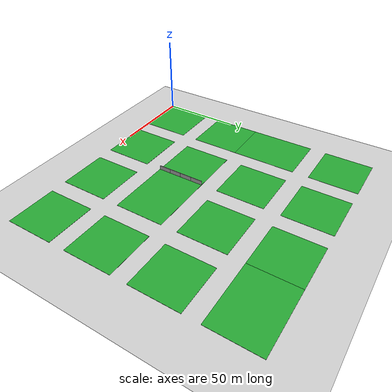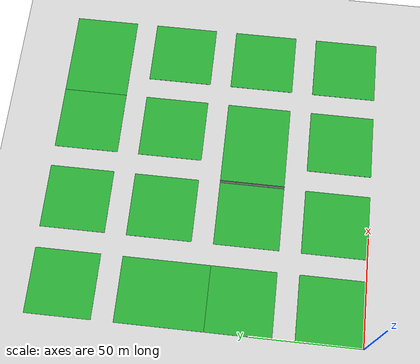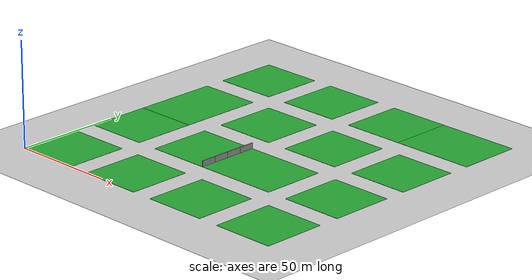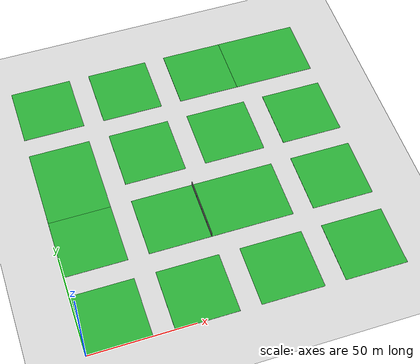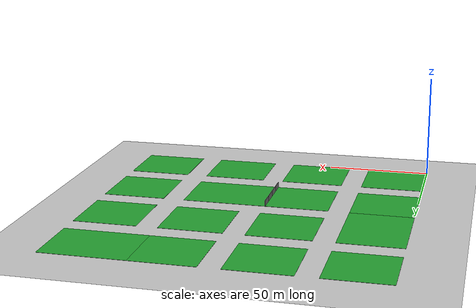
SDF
<sdf version="1.6">
 <world name="default">
  <plugin name="ros_interface_plugin" filename="librotors_gazebo_ros_interface_plugin.so"/>
  <physics name="default_physics" default="0" type="ode">
   <ode>
    <solver>
     <type>quick</type>
     <iters>1000</iters>
     <sor>1.3</sor>
     <use_dynamic_moi_rescaling>0</use_dynamic_moi_rescaling>
    </solver>
    <constraints>
     <cfm>0</cfm>
     <erp>0.2</erp>
     <contact_max_correcting_vel>100</contact_max_correcting_vel>
     <contact_surface_layer>0.001</contact_surface_layer>
    </constraints>
   </ode>
   <max_step_size>0.01</max_step_size>
   <real_time_factor>1</real_time_factor>
   <real_time_update_rate>100</real_time_update_rate>
  </physics>
  <model name="ground_plane">
   <static>1</static>
   <link name="link">
    <collision name="collision">
     <geometry><plane><normal>0 0 1</normal><size>150 150</size></plane></geometry>
     <surface>
      <contact><collide_bitmask>65535</collide_bitmask></contact>
      <friction><ode><mu>100</mu><mu2>50</mu2></ode></friction>
     </surface>
    </collision>
    <visual name="visual">
     <cast_shadows>0</cast_shadows>
     <geometry><plane><normal>0 0 1</normal><size>150 150</size></plane></geometry>
     <material>
      <script><uri>file://media/materials/scripts/gazebo.material</uri><name>Gazebo/Grey</name></script>
     </material>
    </visual>
   </link>
   <pose>75 75 0 0 -0 1.5707</pose>
  </model>
  <light name="sun" type="directional">
   <cast_shadows>0</cast_shadows>
   <pose>50 50 50 0 -0 0</pose>
   <diffuse>0.8 0.8 0.8 1</diffuse>
   <specular>0.2 0.2 0.2 1</specular>
   <attenuation>
    <range>1000</range>
    <constant>0.9</constant>
    <linear>0.01</linear>
    <quadratic>0.001</quadratic>
   </attenuation>
   <direction>0.2 0.2 -0.9</direction>
  </light>
  <model name="block_plane">
   <link name="link">
    <inertial>
     <mass>1</mass>
     <inertia>
      <ixx>0.166667</ixx>
      <ixy>0</ixy>
      <ixz>0</ixz>
      <iyy>0.166667</iyy>
      <iyz>0</iyz>
      <izz>0.166667</izz>
     </inertia>
    </inertial>
    <visual name="visual">
     <geometry><box><size>30 30 0.1</size></box></geometry>
     <material>
      <script><name>Gazebo/Green</name><uri>file://media/materials/scripts/gazebo.material</uri></script>
      <shader type="vertex"><normal_map>__default__</normal_map></shader>
      <ambient>0.1 0.5 0.1 1</ambient>
      <diffuse>0.4 0.7 0.4 1</diffuse>
      <specular>0.01 0.01 0.01 1</specular>
      <emissive>0 0 0 1</emissive>
     </material>
    </visual>
    <collision name="collision">
     <geometry><box><size>30 30 0.1</size></box></geometry>
     <surface>
      <friction>
       <ode><mu>1</mu><mu2>1</mu2><fdir1>0 0 0</fdir1><slip1>0</slip1><slip2>0</slip2></ode>
       <torsional>
        <coefficient>1</coefficient>
        <patch_radius>0</patch_radius>
        <surface_radius>0</surface_radius>
        <use_patch_radius>1</use_patch_radius>
        <ode><slip>0</slip></ode>
       </torsional>
      </friction>
      <bounce><restitution_coefficient>0</restitution_coefficient><threshold>1e+06</threshold></bounce>
      <contact>
       <collide_without_contact>0</collide_without_contact>
       <collide_without_contact_bitmask>1</collide_without_contact_bitmask>
       <collide_bitmask>1</collide_bitmask>
       <ode>
        <soft_cfm>0</soft_cfm>
        <soft_erp>0.2</soft_erp>
        <kp>1e+13</kp>
        <kd>1</kd>
        <max_vel>0.01</max_vel>
        <min_depth>0</min_depth>
       </ode>
       <bullet>
        <split_impulse>1</split_impulse>
        <split_impulse_penetration_threshold>-0.01</split_impulse_penetration_threshold>
        <soft_cfm>0</soft_cfm>
        <soft_erp>0.2</soft_erp>
        <kp>1e+13</kp>
        <kd>1</kd>
       </bullet>
      </contact>
     </surface>
    </collision>
   </link>
   <static>1</static>
   <pose>15 15 0 0 -0 0</pose>
  </model>
  <model name="block_plane_1">
   <link name="link">
    <inertial>
     <mass>1</mass>
     <inertia>
      <ixx>0.166667</ixx>
      <ixy>0</ixy>
      <ixz>0</ixz>
      <iyy>0.166667</iyy>
      <iyz>0</iyz>
      <izz>0.166667</izz>
     </inertia>
    </inertial>
    <visual name="visual">
     <geometry><box><size>30 30 0.1</size></box></geometry>
     <material>
      <script><name>Gazebo/Green</name><uri>file://media/materials/scripts/gazebo.material</uri></script>
      <shader type="vertex"><normal_map>__default__</normal_map></shader>
      <ambient>0.1 0.5 0.1 1</ambient>
      <diffuse>0.4 0.7 0.4 1</diffuse>
      <specular>0.01 0.01 0.01 1</specular>
      <emissive>0 0 0 1</emissive>
     </material>
    </visual>
    <collision name="collision">
     <geometry><box><size>30 30 0.1</size></box></geometry>
     <surface>
      <friction>
       <ode><mu>1</mu><mu2>1</mu2><fdir1>0 0 0</fdir1><slip1>0</slip1><slip2>0</slip2></ode>
       <torsional>
        <coefficient>1</coefficient>
        <patch_radius>0</patch_radius>
        <surface_radius>0</surface_radius>
        <use_patch_radius>1</use_patch_radius>
        <ode><slip>0</slip></ode>
       </torsional>
      </friction>
      <bounce><restitution_coefficient>0</restitution_coefficient><threshold>1e+06</threshold></bounce>
      <contact>
       <collide_without_contact>0</collide_without_contact>
       <collide_without_contact_bitmask>1</collide_without_contact_bitmask>
       <collide_bitmask>1</collide_bitmask>
       <ode>
        <soft_cfm>0</soft_cfm>
        <soft_erp>0.2</soft_erp>
        <kp>1e+13</kp>
        <kd>1</kd>
        <max_vel>0.01</max_vel>
        <min_depth>0</min_depth>
       </ode>
       <bullet>
        <split_impulse>1</split_impulse>
        <split_impulse_penetration_threshold>-0.01</split_impulse_penetration_threshold>
        <soft_cfm>0</soft_cfm>
        <soft_erp>0.2</soft_erp>
        <kp>1e+13</kp>
        <kd>1</kd>
       </bullet>
      </contact>
     </surface>
    </collision>
   </link>
   <static>1</static>
   <pose>55 15 0 0 -0 0</pose>
  </model>
  <model name="block_plane_2">
   <link name="link">
    <inertial>
     <mass>1</mass>
     <inertia>
      <ixx>0.166667</ixx>
      <ixy>0</ixy>
      <ixz>0</ixz>
      <iyy>0.166667</iyy>
      <iyz>0</iyz>
      <izz>0.166667</izz>
     </inertia>
    </inertial>
    <visual name="visual">
     <geometry><box><size>30 30 0.1</size></box></geometry>
     <material>
      <script><name>Gazebo/Green</name><uri>file://media/materials/scripts/gazebo.material</uri></script>
      <shader type="vertex"><normal_map>__default__</normal_map></shader>
      <ambient>0.1 0.5 0.1 1</ambient>
      <diffuse>0.4 0.7 0.4 1</diffuse>
      <specular>0.01 0.01 0.01 1</specular>
      <emissive>0 0 0 1</emissive>
     </material>
    </visual>
    <collision name="collision">
     <geometry><box><size>30 30 0.1</size></box></geometry>
     <surface>
      <friction>
       <ode><mu>1</mu><mu2>1</mu2><fdir1>0 0 0</fdir1><slip1>0</slip1><slip2>0</slip2></ode>
       <torsional>
        <coefficient>1</coefficient>
        <patch_radius>0</patch_radius>
        <surface_radius>0</surface_radius>
        <use_patch_radius>1</use_patch_radius>
        <ode><slip>0</slip></ode>
       </torsional>
      </friction>
      <bounce><restitution_coefficient>0</restitution_coefficient><threshold>1e+06</threshold></bounce>
      <contact>
       <collide_without_contact>0</collide_without_contact>
       <collide_without_contact_bitmask>1</collide_without_contact_bitmask>
       <collide_bitmask>1</collide_bitmask>
       <ode>
        <soft_cfm>0</soft_cfm>
        <soft_erp>0.2</soft_erp>
        <kp>1e+13</kp>
        <kd>1</kd>
        <max_vel>0.01</max_vel>
        <min_depth>0</min_depth>
       </ode>
       <bullet>
        <split_impulse>1</split_impulse>
        <split_impulse_penetration_threshold>-0.01</split_impulse_penetration_threshold>
        <soft_cfm>0</soft_cfm>
        <soft_erp>0.2</soft_erp>
        <kp>1e+13</kp>
        <kd>1</kd>
       </bullet>
      </contact>
     </surface>
    </collision>
   </link>
   <static>1</static>
   <pose>95 15 0 0 -0 0</pose>
  </model>
  <model name="block_plane_3">
   <link name="link">
    <inertial>
     <mass>1</mass>
     <inertia>
      <ixx>0.166667</ixx>
      <ixy>0</ixy>
      <ixz>0</ixz>
      <iyy>0.166667</iyy>
      <iyz>0</iyz>
      <izz>0.166667</izz>
     </inertia>
    </inertial>
    <visual name="visual">
     <geometry><box><size>30 30 0.1</size></box></geometry>
     <material>
      <script><name>Gazebo/Green</name><uri>file://media/materials/scripts/gazebo.material</uri></script>
      <shader type="vertex"><normal_map>__default__</normal_map></shader>
      <ambient>0.1 0.5 0.1 1</ambient>
      <diffuse>0.4 0.7 0.4 1</diffuse>
      <specular>0.01 0.01 0.01 1</specular>
      <emissive>0 0 0 1</emissive>
     </material>
    </visual>
    <collision name="collision">
     <geometry><box><size>30 30 0.1</size></box></geometry>
     <surface>
      <friction>
       <ode><mu>1</mu><mu2>1</mu2><fdir1>0 0 0</fdir1><slip1>0</slip1><slip2>0</slip2></ode>
       <torsional>
        <coefficient>1</coefficient>
        <patch_radius>0</patch_radius>
        <surface_radius>0</surface_radius>
        <use_patch_radius>1</use_patch_radius>
        <ode><slip>0</slip></ode>
       </torsional>
      </friction>
      <bounce><restitution_coefficient>0</restitution_coefficient><threshold>1e+06</threshold></bounce>
      <contact>
       <collide_without_contact>0</collide_without_contact>
       <collide_without_contact_bitmask>1</collide_without_contact_bitmask>
       <collide_bitmask>1</collide_bitmask>
       <ode>
        <soft_cfm>0</soft_cfm>
        <soft_erp>0.2</soft_erp>
        <kp>1e+13</kp>
        <kd>1</kd>
        <max_vel>0.01</max_vel>
        <min_depth>0</min_depth>
       </ode>
       <bullet>
        <split_impulse>1</split_impulse>
        <split_impulse_penetration_threshold>-0.01</split_impulse_penetration_threshold>
        <soft_cfm>0</soft_cfm>
        <soft_erp>0.2</soft_erp>
        <kp>1e+13</kp>
        <kd>1</kd>
       </bullet>
      </contact>
     </surface>
    </collision>
   </link>
   <static>1</static>
   <pose>135 15 0 0 -0 0</pose>
  </model>
  <model name="block_plane_4">
   <link name="link">
    <inertial>
     <mass>1</mass>
     <inertia>
      <ixx>0.166667</ixx>
      <ixy>0</ixy>
      <ixz>0</ixz>
      <iyy>0.166667</iyy>
      <iyz>0</iyz>
      <izz>0.166667</izz>
     </inertia>
    </inertial>
    <visual name="visual">
     <geometry><box><size>30 30 0.1</size></box></geometry>
     <material>
      <script><name>Gazebo/Green</name><uri>file://media/materials/scripts/gazebo.material</uri></script>
      <shader type="vertex"><normal_map>__default__</normal_map></shader>
      <ambient>0.1 0.5 0.1 1</ambient>
      <diffuse>0.4 0.7 0.4 1</diffuse>
      <specular>0.01 0.01 0.01 1</specular>
      <emissive>0 0 0 1</emissive>
     </material>
    </visual>
    <collision name="collision">
     <geometry><box><size>30 30 0.1</size></box></geometry>
     <surface>
      <friction>
       <ode><mu>1</mu><mu2>1</mu2><fdir1>0 0 0</fdir1><slip1>0</slip1><slip2>0</slip2></ode>
       <torsional>
        <coefficient>1</coefficient>
        <patch_radius>0</patch_radius>
        <surface_radius>0</surface_radius>
        <use_patch_radius>1</use_patch_radius>
        <ode><slip>0</slip></ode>
       </torsional>
      </friction>
      <bounce><restitution_coefficient>0</restitution_coefficient><threshold>1e+06</threshold></bounce>
      <contact>
       <collide_without_contact>0</collide_without_contact>
       <collide_without_contact_bitmask>1</collide_without_contact_bitmask>
       <collide_bitmask>1</collide_bitmask>
       <ode>
        <soft_cfm>0</soft_cfm>
        <soft_erp>0.2</soft_erp>
        <kp>1e+13</kp>
        <kd>1</kd>
        <max_vel>0.01</max_vel>
        <min_depth>0</min_depth>
       </ode>
       <bullet>
        <split_impulse>1</split_impulse>
        <split_impulse_penetration_threshold>-0.01</split_impulse_penetration_threshold>
        <soft_cfm>0</soft_cfm>
        <soft_erp>0.2</soft_erp>
        <kp>1e+13</kp>
        <kd>1</kd>
       </bullet>
      </contact>
     </surface>
    </collision>
   </link>
   <static>1</static>
   <pose>15 55 0 0 -0 0</pose>
  </model>
  <model name="block_plane_5">
   <link name="link">
    <inertial>
     <mass>1</mass>
     <inertia>
      <ixx>0.166667</ixx>
      <ixy>0</ixy>
      <ixz>0</ixz>
      <iyy>0.166667</iyy>
      <iyz>0</iyz>
      <izz>0.166667</izz>
     </inertia>
    </inertial>
    <visual name="visual">
     <geometry><box><size>30 30 0.1</size></box></geometry>
     <material>
      <script><name>Gazebo/Green</name><uri>file://media/materials/scripts/gazebo.material</uri></script>
      <shader type="vertex"><normal_map>__default__</normal_map></shader>
      <ambient>0.1 0.5 0.1 1</ambient>
      <diffuse>0.4 0.7 0.4 1</diffuse>
      <specular>0.01 0.01 0.01 1</specular>
      <emissive>0 0 0 1</emissive>
     </material>
    </visual>
    <collision name="collision">
     <geometry><box><size>30 30 0.1</size></box></geometry>
     <surface>
      <friction>
       <ode><mu>1</mu><mu2>1</mu2><fdir1>0 0 0</fdir1><slip1>0</slip1><slip2>0</slip2></ode>
       <torsional>
        <coefficient>1</coefficient>
        <patch_radius>0</patch_radius>
        <surface_radius>0</surface_radius>
        <use_patch_radius>1</use_patch_radius>
        <ode><slip>0</slip></ode>
       </torsional>
      </friction>
      <bounce><restitution_coefficient>0</restitution_coefficient><threshold>1e+06</threshold></bounce>
      <contact>
       <collide_without_contact>0</collide_without_contact>
       <collide_without_contact_bitmask>1</collide_without_contact_bitmask>
       <collide_bitmask>1</collide_bitmask>
       <ode>
        <soft_cfm>0</soft_cfm>
        <soft_erp>0.2</soft_erp>
        <kp>1e+13</kp>
        <kd>1</kd>
        <max_vel>0.01</max_vel>
        <min_depth>0</min_depth>
       </ode>
       <bullet>
        <split_impulse>1</split_impulse>
        <split_impulse_penetration_threshold>-0.01</split_impulse_penetration_threshold>
        <soft_cfm>0</soft_cfm>
        <soft_erp>0.2</soft_erp>
        <kp>1e+13</kp>
        <kd>1</kd>
       </bullet>
      </contact>
     </surface>
    </collision>
   </link>
   <static>1</static>
   <pose>55 55 0 0 -0 0</pose>
  </model>
  <model name="block_plane_6">
   <link name="link">
    <inertial>
     <mass>1</mass>
     <inertia>
      <ixx>0.166667</ixx>
      <ixy>0</ixy>
      <ixz>0</ixz>
      <iyy>0.166667</iyy>
      <iyz>0</iyz>
      <izz>0.166667</izz>
     </inertia>
    </inertial>
    <visual name="visual">
     <geometry><box><size>30 30 0.1</size></box></geometry>
     <material>
      <script><name>Gazebo/Green</name><uri>file://media/materials/scripts/gazebo.material</uri></script>
      <shader type="vertex"><normal_map>__default__</normal_map></shader>
      <ambient>0.1 0.5 0.1 1</ambient>
      <diffuse>0.4 0.7 0.4 1</diffuse>
      <specular>0.01 0.01 0.01 1</specular>
      <emissive>0 0 0 1</emissive>
     </material>
    </visual>
    <collision name="collision">
     <geometry><box><size>30 30 0.1</size></box></geometry>
     <surface>
      <friction>
       <ode><mu>1</mu><mu2>1</mu2><fdir1>0 0 0</fdir1><slip1>0</slip1><slip2>0</slip2></ode>
       <torsional>
        <coefficient>1</coefficient>
        <patch_radius>0</patch_radius>
        <surface_radius>0</surface_radius>
        <use_patch_radius>1</use_patch_radius>
        <ode><slip>0</slip></ode>
       </torsional>
      </friction>
      <bounce><restitution_coefficient>0</restitution_coefficient><threshold>1e+06</threshold></bounce>
      <contact>
       <collide_without_contact>0</collide_without_contact>
       <collide_without_contact_bitmask>1</collide_without_contact_bitmask>
       <collide_bitmask>1</collide_bitmask>
       <ode>
        <soft_cfm>0</soft_cfm>
        <soft_erp>0.2</soft_erp>
        <kp>1e+13</kp>
        <kd>1</kd>
        <max_vel>0.01</max_vel>
        <min_depth>0</min_depth>
       </ode>
       <bullet>
        <split_impulse>1</split_impulse>
        <split_impulse_penetration_threshold>-0.01</split_impulse_penetration_threshold>
        <soft_cfm>0</soft_cfm>
        <soft_erp>0.2</soft_erp>
        <kp>1e+13</kp>
        <kd>1</kd>
       </bullet>
      </contact>
     </surface>
    </collision>
   </link>
   <static>1</static>
   <pose>135 55 0 0 -0 0</pose>
  </model>
  <model name="block_plane_7">
   <link name="link">
    <inertial>
     <mass>1</mass>
     <inertia>
      <ixx>0.166667</ixx>
      <ixy>0</ixy>
      <ixz>0</ixz>
      <iyy>0.166667</iyy>
      <iyz>0</iyz>
      <izz>0.166667</izz>
     </inertia>
    </inertial>
    <visual name="visual">
     <geometry><box><size>30 30 0.1</size></box></geometry>
     <material>
      <script><name>Gazebo/Green</name><uri>file://media/materials/scripts/gazebo.material</uri></script>
      <shader type="vertex"><normal_map>__default__</normal_map></shader>
      <ambient>0.1 0.5 0.1 1</ambient>
      <diffuse>0.4 0.7 0.4 1</diffuse>
      <specular>0.01 0.01 0.01 1</specular>
      <emissive>0 0 0 1</emissive>
     </material>
    </visual>
    <collision name="collision">
     <geometry><box><size>30 30 0.1</size></box></geometry>
     <surface>
      <friction>
       <ode><mu>1</mu><mu2>1</mu2><fdir1>0 0 0</fdir1><slip1>0</slip1><slip2>0</slip2></ode>
       <torsional>
        <coefficient>1</coefficient>
        <patch_radius>0</patch_radius>
        <surface_radius>0</surface_radius>
        <use_patch_radius>1</use_patch_radius>
        <ode><slip>0</slip></ode>
       </torsional>
      </friction>
      <bounce><restitution_coefficient>0</restitution_coefficient><threshold>1e+06</threshold></bounce>
      <contact>
       <collide_without_contact>0</collide_without_contact>
       <collide_without_contact_bitmask>1</collide_without_contact_bitmask>
       <collide_bitmask>1</collide_bitmask>
       <ode>
        <soft_cfm>0</soft_cfm>
        <soft_erp>0.2</soft_erp>
        <kp>1e+13</kp>
        <kd>1</kd>
        <max_vel>0.01</max_vel>
        <min_depth>0</min_depth>
       </ode>
       <bullet>
        <split_impulse>1</split_impulse>
        <split_impulse_penetration_threshold>-0.01</split_impulse_penetration_threshold>
        <soft_cfm>0</soft_cfm>
        <soft_erp>0.2</soft_erp>
        <kp>1e+13</kp>
        <kd>1</kd>
       </bullet>
      </contact>
     </surface>
    </collision>
   </link>
   <static>1</static>
   <pose>55 95 0 0 -0 0</pose>
  </model>
  <model name="block_plane_8">
   <link name="link">
    <inertial>
     <mass>1</mass>
     <inertia>
      <ixx>0.166667</ixx>
      <ixy>0</ixy>
      <ixz>0</ixz>
      <iyy>0.166667</iyy>
      <iyz>0</iyz>
      <izz>0.166667</izz>
     </inertia>
    </inertial>
    <visual name="visual">
     <geometry><box><size>30 30 0.1</size></box></geometry>
     <material>
      <script><name>Gazebo/Green</name><uri>file://media/materials/scripts/gazebo.material</uri></script>
      <shader type="vertex"><normal_map>__default__</normal_map></shader>
      <ambient>0.1 0.5 0.1 1</ambient>
      <diffuse>0.4 0.7 0.4 1</diffuse>
      <specular>0.01 0.01 0.01 1</specular>
      <emissive>0 0 0 1</emissive>
     </material>
    </visual>
    <collision name="collision">
     <geometry><box><size>30 30 0.1</size></box></geometry>
     <surface>
      <friction>
       <ode><mu>1</mu><mu2>1</mu2><fdir1>0 0 0</fdir1><slip1>0</slip1><slip2>0</slip2></ode>
       <torsional>
        <coefficient>1</coefficient>
        <patch_radius>0</patch_radius>
        <surface_radius>0</surface_radius>
        <use_patch_radius>1</use_patch_radius>
        <ode><slip>0</slip></ode>
       </torsional>
      </friction>
      <bounce><restitution_coefficient>0</restitution_coefficient><threshold>1e+06</threshold></bounce>
      <contact>
       <collide_without_contact>0</collide_without_contact>
       <collide_without_contact_bitmask>1</collide_without_contact_bitmask>
       <collide_bitmask>1</collide_bitmask>
       <ode>
        <soft_cfm>0</soft_cfm>
        <soft_erp>0.2</soft_erp>
        <kp>1e+13</kp>
        <kd>1</kd>
        <max_vel>0.01</max_vel>
        <min_depth>0</min_depth>
       </ode>
       <bullet>
        <split_impulse>1</split_impulse>
        <split_impulse_penetration_threshold>-0.01</split_impulse_penetration_threshold>
        <soft_cfm>0</soft_cfm>
        <soft_erp>0.2</soft_erp>
        <kp>1e+13</kp>
        <kd>1</kd>
       </bullet>
      </contact>
     </surface>
    </collision>
   </link>
   <static>1</static>
   <pose>95 95 0 0 -0 0</pose>
  </model>
  <model name="block_plane_9">
   <link name="link">
    <inertial>
     <mass>1</mass>
     <inertia>
      <ixx>0.166667</ixx>
      <ixy>0</ixy>
      <ixz>0</ixz>
      <iyy>0.166667</iyy>
      <iyz>0</iyz>
      <izz>0.166667</izz>
     </inertia>
    </inertial>
    <visual name="visual">
     <geometry><box><size>30 30 0.1</size></box></geometry>
     <material>
      <script><name>Gazebo/Green</name><uri>file://media/materials/scripts/gazebo.material</uri></script>
      <shader type="vertex"><normal_map>__default__</normal_map></shader>
      <ambient>0.1 0.5 0.1 1</ambient>
      <diffuse>0.4 0.7 0.4 1</diffuse>
      <specular>0.01 0.01 0.01 1</specular>
      <emissive>0 0 0 1</emissive>
     </material>
    </visual>
    <collision name="collision">
     <geometry><box><size>30 30 0.1</size></box></geometry>
     <surface>
      <friction>
       <ode><mu>1</mu><mu2>1</mu2><fdir1>0 0 0</fdir1><slip1>0</slip1><slip2>0</slip2></ode>
       <torsional>
        <coefficient>1</coefficient>
        <patch_radius>0</patch_radius>
        <surface_radius>0</surface_radius>
        <use_patch_radius>1</use_patch_radius>
        <ode><slip>0</slip></ode>
       </torsional>
      </friction>
      <bounce><restitution_coefficient>0</restitution_coefficient><threshold>1e+06</threshold></bounce>
      <contact>
       <collide_without_contact>0</collide_without_contact>
       <collide_without_contact_bitmask>1</collide_without_contact_bitmask>
       <collide_bitmask>1</collide_bitmask>
       <ode>
        <soft_cfm>0</soft_cfm>
        <soft_erp>0.2</soft_erp>
        <kp>1e+13</kp>
        <kd>1</kd>
        <max_vel>0.01</max_vel>
        <min_depth>0</min_depth>
       </ode>
       <bullet>
        <split_impulse>1</split_impulse>
        <split_impulse_penetration_threshold>-0.01</split_impulse_penetration_threshold>
        <soft_cfm>0</soft_cfm>
        <soft_erp>0.2</soft_erp>
        <kp>1e+13</kp>
        <kd>1</kd>
       </bullet>
      </contact>
     </surface>
    </collision>
   </link>
   <static>1</static>
   <pose>135 95 0 0 -0 0</pose>
  </model>
  <model name="block_plane_10">
   <link name="link">
    <inertial>
     <mass>1</mass>
     <inertia>
      <ixx>0.166667</ixx>
      <ixy>0</ixy>
      <ixz>0</ixz>
      <iyy>0.166667</iyy>
      <iyz>0</iyz>
      <izz>0.166667</izz>
     </inertia>
    </inertial>
    <visual name="visual">
     <geometry><box><size>30 30 0.1</size></box></geometry>
     <material>
      <script><name>Gazebo/Green</name><uri>file://media/materials/scripts/gazebo.material</uri></script>
      <shader type="vertex"><normal_map>__default__</normal_map></shader>
      <ambient>0.1 0.5 0.1 1</ambient>
      <diffuse>0.4 0.7 0.4 1</diffuse>
      <specular>0.01 0.01 0.01 1</specular>
      <emissive>0 0 0 1</emissive>
     </material>
    </visual>
    <collision name="collision">
     <geometry><box><size>30 30 0.1</size></box></geometry>
     <surface>
      <friction>
       <ode><mu>1</mu><mu2>1</mu2><fdir1>0 0 0</fdir1><slip1>0</slip1><slip2>0</slip2></ode>
       <torsional>
        <coefficient>1</coefficient>
        <patch_radius>0</patch_radius>
        <surface_radius>0</surface_radius>
        <use_patch_radius>1</use_patch_radius>
        <ode><slip>0</slip></ode>
       </torsional>
      </friction>
      <bounce><restitution_coefficient>0</restitution_coefficient><threshold>1e+06</threshold></bounce>
      <contact>
       <collide_without_contact>0</collide_without_contact>
       <collide_without_contact_bitmask>1</collide_without_contact_bitmask>
       <collide_bitmask>1</collide_bitmask>
       <ode>
        <soft_cfm>0</soft_cfm>
        <soft_erp>0.2</soft_erp>
        <kp>1e+13</kp>
        <kd>1</kd>
        <max_vel>0.01</max_vel>
        <min_depth>0</min_depth>
       </ode>
       <bullet>
        <split_impulse>1</split_impulse>
        <split_impulse_penetration_threshold>-0.01</split_impulse_penetration_threshold>
        <soft_cfm>0</soft_cfm>
        <soft_erp>0.2</soft_erp>
        <kp>1e+13</kp>
        <kd>1</kd>
       </bullet>
      </contact>
     </surface>
    </collision>
   </link>
   <static>1</static>
   <pose>15 135 0 0 -0 0</pose>
  </model>
  <model name="block_plane_11">
   <link name="link">
    <inertial>
     <mass>1</mass>
     <inertia>
      <ixx>0.166667</ixx>
      <ixy>0</ixy>
      <ixz>0</ixz>
      <iyy>0.166667</iyy>
      <iyz>0</iyz>
      <izz>0.166667</izz>
     </inertia>
    </inertial>
    <visual name="visual">
     <geometry><box><size>30 30 0.1</size></box></geometry>
     <material>
      <script><name>Gazebo/Green</name><uri>file://media/materials/scripts/gazebo.material</uri></script>
      <shader type="vertex"><normal_map>__default__</normal_map></shader>
      <ambient>0.1 0.5 0.1 1</ambient>
      <diffuse>0.4 0.7 0.4 1</diffuse>
      <specular>0.01 0.01 0.01 1</specular>
      <emissive>0 0 0 1</emissive>
     </material>
    </visual>
    <collision name="collision">
     <geometry><box><size>30 30 0.1</size></box></geometry>
     <surface>
      <friction>
       <ode><mu>1</mu><mu2>1</mu2><fdir1>0 0 0</fdir1><slip1>0</slip1><slip2>0</slip2></ode>
       <torsional>
        <coefficient>1</coefficient>
        <patch_radius>0</patch_radius>
        <surface_radius>0</surface_radius>
        <use_patch_radius>1</use_patch_radius>
        <ode><slip>0</slip></ode>
       </torsional>
      </friction>
      <bounce><restitution_coefficient>0</restitution_coefficient><threshold>1e+06</threshold></bounce>
      <contact>
       <collide_without_contact>0</collide_without_contact>
       <collide_without_contact_bitmask>1</collide_without_contact_bitmask>
       <collide_bitmask>1</collide_bitmask>
       <ode>
        <soft_cfm>0</soft_cfm>
        <soft_erp>0.2</soft_erp>
        <kp>1e+13</kp>
        <kd>1</kd>
        <max_vel>0.01</max_vel>
        <min_depth>0</min_depth>
       </ode>
       <bullet>
        <split_impulse>1</split_impulse>
        <split_impulse_penetration_threshold>-0.01</split_impulse_penetration_threshold>
        <soft_cfm>0</soft_cfm>
        <soft_erp>0.2</soft_erp>
        <kp>1e+13</kp>
        <kd>1</kd>
       </bullet>
      </contact>
     </surface>
    </collision>
   </link>
   <static>1</static>
   <pose>55 135 0 0 -0 0</pose>
  </model>
  <model name="block_plane_12">
   <link name="link">
    <inertial>
     <mass>1</mass>
     <inertia>
      <ixx>0.166667</ixx>
      <ixy>0</ixy>
      <ixz>0</ixz>
      <iyy>0.166667</iyy>
      <iyz>0</iyz>
      <izz>0.166667</izz>
     </inertia>
    </inertial>
    <visual name="visual">
     <geometry><box><size>30 30 0.1</size></box></geometry>
     <material>
      <script><name>Gazebo/Green</name><uri>file://media/materials/scripts/gazebo.material</uri></script>
      <shader type="vertex"><normal_map>__default__</normal_map></shader>
      <ambient>0.1 0.5 0.1 1</ambient>
      <diffuse>0.4 0.7 0.4 1</diffuse>
      <specular>0.01 0.01 0.01 1</specular>
      <emissive>0 0 0 1</emissive>
     </material>
    </visual>
    <collision name="collision">
     <geometry><box><size>30 30 0.1</size></box></geometry>
     <surface>
      <friction>
       <ode><mu>1</mu><mu2>1</mu2><fdir1>0 0 0</fdir1><slip1>0</slip1><slip2>0</slip2></ode>
       <torsional>
        <coefficient>1</coefficient>
        <patch_radius>0</patch_radius>
        <surface_radius>0</surface_radius>
        <use_patch_radius>1</use_patch_radius>
        <ode><slip>0</slip></ode>
       </torsional>
      </friction>
      <bounce><restitution_coefficient>0</restitution_coefficient><threshold>1e+06</threshold></bounce>
      <contact>
       <collide_without_contact>0</collide_without_contact>
       <collide_without_contact_bitmask>1</collide_without_contact_bitmask>
       <collide_bitmask>1</collide_bitmask>
       <ode>
        <soft_cfm>0</soft_cfm>
        <soft_erp>0.2</soft_erp>
        <kp>1e+13</kp>
        <kd>1</kd>
        <max_vel>0.01</max_vel>
        <min_depth>0</min_depth>
       </ode>
       <bullet>
        <split_impulse>1</split_impulse>
        <split_impulse_penetration_threshold>-0.01</split_impulse_penetration_threshold>
        <soft_cfm>0</soft_cfm>
        <soft_erp>0.2</soft_erp>
        <kp>1e+13</kp>
        <kd>1</kd>
       </bullet>
      </contact>
     </surface>
    </collision>
   </link>
   <static>1</static>
   <pose>95 135 0 0 -0 0</pose>
  </model>
  <model name="block_plane_long_13">
   <link name="link">
    <inertial>
     <mass>1</mass>
     <inertia>
      <ixx>0.166667</ixx>
      <ixy>0</ixy>
      <ixz>0</ixz>
      <iyy>0.166667</iyy>
      <iyz>0</iyz>
      <izz>0.166667</izz>
     </inertia>
    </inertial>
    <visual name="visual">
     <geometry><box><size>30 40 0.1</size></box></geometry>
     <material>
      <script><name>Gazebo/Green</name><uri>file://media/materials/scripts/gazebo.material</uri></script>
      <shader type="vertex"><normal_map>__default__</normal_map></shader>
      <ambient>0.1 0.5 0.1 1</ambient>
      <diffuse>0.4 0.7 0.4 1</diffuse>
      <specular>0.01 0.01 0.01 1</specular>
      <emissive>0 0 0 1</emissive>
     </material>
    </visual>
    <collision name="collision">
     <geometry><box><size>30 40 0.1</size></box></geometry>
     <surface>
      <friction>
       <ode><mu>1</mu><mu2>1</mu2><fdir1>0 0 0</fdir1><slip1>0</slip1><slip2>0</slip2></ode>
       <torsional>
        <coefficient>1</coefficient>
        <patch_radius>0</patch_radius>
        <surface_radius>0</surface_radius>
        <use_patch_radius>1</use_patch_radius>
        <ode><slip>0</slip></ode>
       </torsional>
      </friction>
      <bounce><restitution_coefficient>0</restitution_coefficient><threshold>1e+06</threshold></bounce>
      <contact>
       <collide_without_contact>0</collide_without_contact>
       <collide_without_contact_bitmask>1</collide_without_contact_bitmask>
       <collide_bitmask>1</collide_bitmask>
       <ode>
        <soft_cfm>0</soft_cfm>
        <soft_erp>0.2</soft_erp>
        <kp>1e+13</kp>
        <kd>1</kd>
        <max_vel>0.01</max_vel>
        <min_depth>0</min_depth>
       </ode>
       <bullet>
        <split_impulse>1</split_impulse>
        <split_impulse_penetration_threshold>-0.01</split_impulse_penetration_threshold>
        <soft_cfm>0</soft_cfm>
        <soft_erp>0.2</soft_erp>
        <kp>1e+13</kp>
        <kd>1</kd>
       </bullet>
      </contact>
     </surface>
    </collision>
   </link>
   <static>1</static>
   <pose>90 55 0 0 0 -1.5708</pose>
  </model>
  <model name="block_plane_long_14">
   <link name="link">
    <inertial>
     <mass>1</mass>
     <inertia>
      <ixx>0.166667</ixx>
      <ixy>0</ixy>
      <ixz>0</ixz>
      <iyy>0.166667</iyy>
      <iyz>0</iyz>
      <izz>0.166667</izz>
     </inertia>
    </inertial>
    <visual name="visual">
     <geometry><box><size>30 40 0.1</size></box></geometry>
     <material>
      <script><name>Gazebo/Green</name><uri>file://media/materials/scripts/gazebo.material</uri></script>
      <shader type="vertex"><normal_map>__default__</normal_map></shader>
      <ambient>0.1 0.5 0.1 1</ambient>
      <diffuse>0.4 0.7 0.4 1</diffuse>
      <specular>0.01 0.01 0.01 1</specular>
      <emissive>0 0 0 1</emissive>
     </material>
    </visual>
    <collision name="collision">
     <geometry><box><size>30 40 0.1</size></box></geometry>
     <surface>
      <friction>
       <ode><mu>1</mu><mu2>1</mu2><fdir1>0 0 0</fdir1><slip1>0</slip1><slip2>0</slip2></ode>
       <torsional>
        <coefficient>1</coefficient>
        <patch_radius>0</patch_radius>
        <surface_radius>0</surface_radius>
        <use_patch_radius>1</use_patch_radius>
        <ode><slip>0</slip></ode>
       </torsional>
      </friction>
      <bounce><restitution_coefficient>0</restitution_coefficient><threshold>1e+06</threshold></bounce>
      <contact>
       <collide_without_contact>0</collide_without_contact>
       <collide_without_contact_bitmask>1</collide_without_contact_bitmask>
       <collide_bitmask>1</collide_bitmask>
       <ode>
        <soft_cfm>0</soft_cfm>
        <soft_erp>0.2</soft_erp>
        <kp>1e+13</kp>
        <kd>1</kd>
        <max_vel>0.01</max_vel>
        <min_depth>0</min_depth>
       </ode>
       <bullet>
        <split_impulse>1</split_impulse>
        <split_impulse_penetration_threshold>-0.01</split_impulse_penetration_threshold>
        <soft_cfm>0</soft_cfm>
        <soft_erp>0.2</soft_erp>
        <kp>1e+13</kp>
        <kd>1</kd>
       </bullet>
      </contact>
     </surface>
    </collision>
   </link>
   <static>1</static>
   <pose>15 90 0 0 -0 0</pose>
  </model>
  <model name="block_plane_long_15">
   <link name="link">
    <inertial>
     <mass>1</mass>
     <inertia>
      <ixx>0.166667</ixx>
      <ixy>0</ixy>
      <ixz>0</ixz>
      <iyy>0.166667</iyy>
      <iyz>0</iyz>
      <izz>0.166667</izz>
     </inertia>
    </inertial>
    <visual name="visual">
     <geometry><box><size>30 40 0.1</size></box></geometry>
     <material>
      <script><name>Gazebo/Green</name><uri>file://media/materials/scripts/gazebo.material</uri></script>
      <shader type="vertex"><normal_map>__default__</normal_map></shader>
      <ambient>0.1 0.5 0.1 1</ambient>
      <diffuse>0.4 0.7 0.4 1</diffuse>
      <specular>0.01 0.01 0.01 1</specular>
      <emissive>0 0 0 1</emissive>
     </material>
    </visual>
    <collision name="collision">
     <geometry><box><size>30 40 0.1</size></box></geometry>
     <surface>
      <friction>
       <ode><mu>1</mu><mu2>1</mu2><fdir1>0 0 0</fdir1><slip1>0</slip1><slip2>0</slip2></ode>
       <torsional>
        <coefficient>1</coefficient>
        <patch_radius>0</patch_radius>
        <surface_radius>0</surface_radius>
        <use_patch_radius>1</use_patch_radius>
        <ode><slip>0</slip></ode>
       </torsional>
      </friction>
      <bounce><restitution_coefficient>0</restitution_coefficient><threshold>1e+06</threshold></bounce>
      <contact>
       <collide_without_contact>0</collide_without_contact>
       <collide_without_contact_bitmask>1</collide_without_contact_bitmask>
       <collide_bitmask>1</collide_bitmask>
       <ode>
        <soft_cfm>0</soft_cfm>
        <soft_erp>0.2</soft_erp>
        <kp>1e+13</kp>
        <kd>1</kd>
        <max_vel>0.01</max_vel>
        <min_depth>0</min_depth>
       </ode>
       <bullet>
        <split_impulse>1</split_impulse>
        <split_impulse_penetration_threshold>-0.01</split_impulse_penetration_threshold>
        <soft_cfm>0</soft_cfm>
        <soft_erp>0.2</soft_erp>
        <kp>1e+13</kp>
        <kd>1</kd>
       </bullet>
      </contact>
     </surface>
    </collision>
   </link>
   <static>1</static>
   <pose>130 135 0 0 -0 1.5708</pose>
  </model>
  <gravity>0 0 -9.8</gravity>
  <magnetic_field>6e-06 2.3e-05 -4.2e-05</magnetic_field>
  <atmosphere type="adiabatic"/>
  <scene><ambient>0.4 0.4 0.4 1</ambient><background>0.7 0.7 0.7 1</background><shadows>1</shadows></scene>
  <audio><device>default</device></audio>
  <spherical_coordinates>
   <surface_model>EARTH_WGS84</surface_model>
   <latitude_deg>0</latitude_deg>
   <longitude_deg>0</longitude_deg>
   <elevation>0</elevation>
   <heading_deg>0</heading_deg>
  </spherical_coordinates>
  <model name="grey_wall">
   <static>1</static>
   <link name="link">
    <pose>0 0 1.4 0 -0 0</pose>
    <collision name="collision"><geometry><box><size>7.5 0.2 2.8</size></box></geometry></collision>
    <visual name="visual">
     <cast_shadows>0</cast_shadows>
     <geometry><box><size>7.5 0.2 2.8</size></box></geometry>
     <material>
      <script>
       <uri>model://grey_wall/materials/scripts</uri>
       <uri>model://grey_wall/materials/textures</uri>
       <name>vrc/grey_wall</name>
      </script>
     </material>
    </visual>
   </link>
   <pose>70 43.75 0 0 -0 1.5708</pose>
  </model>
  <model name="grey_wall_0">
   <static>1</static>
   <link name="link">
    <pose>0 0 1.4 0 -0 0</pose>
    <collision name="collision"><geometry><box><size>7.5 0.2 2.8</size></box></geometry></collision>
    <visual name="visual">
     <cast_shadows>0</cast_shadows>
     <geometry><box><size>7.5 0.2 2.8</size></box></geometry>
     <material>
      <script>
       <uri>model://grey_wall/materials/scripts</uri>
       <uri>model://grey_wall/materials/textures</uri>
       <name>vrc/grey_wall</name>
      </script>
     </material>
    </visual>
   </link>
   <pose>70 51.25 0 0 -0 1.5708</pose>
  </model>
  <model name="grey_wall_1">
   <static>1</static>
   <link name="link">
    <pose>0 0 1.4 0 -0 0</pose>
    <collision name="collision"><geometry><box><size>7.5 0.2 2.8</size></box></geometry></collision>
    <visual name="visual">
     <cast_shadows>0</cast_shadows>
     <geometry><box><size>7.5 0.2 2.8</size></box></geometry>
     <material>
      <script>
       <uri>model://grey_wall/materials/scripts</uri>
       <uri>model://grey_wall/materials/textures</uri>
       <name>vrc/grey_wall</name>
      </script>
     </material>
    </visual>
   </link>
   <pose>70 58.75 0 0 -0 1.5708</pose>
  </model>
  <model name="grey_wall_2">
   <static>1</static>
   <link name="link">
    <pose>0 0 1.4 0 -0 0</pose>
    <collision name="collision"><geometry><box><size>7.5 0.2 2.8</size></box></geometry></collision>
    <visual name="visual">
     <cast_shadows>0</cast_shadows>
     <geometry><box><size>7.5 0.2 2.8</size></box></geometry>
     <material>
      <script>
       <uri>model://grey_wall/materials/scripts</uri>
       <uri>model://grey_wall/materials/textures</uri>
       <name>vrc/grey_wall</name>
      </script>
     </material>
    </visual>
   </link>
   <pose>70 66.25 0 0 -0 1.5708</pose>
  </model>
 </world>
</sdf>
